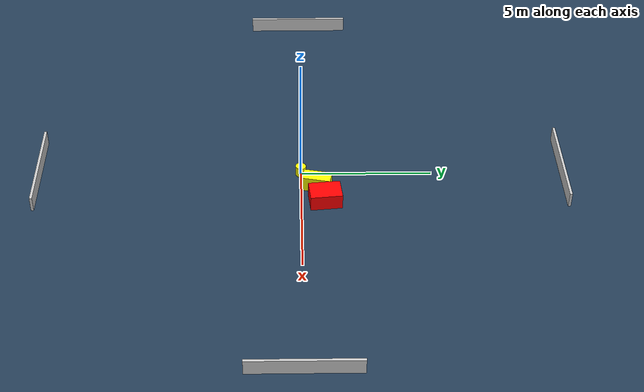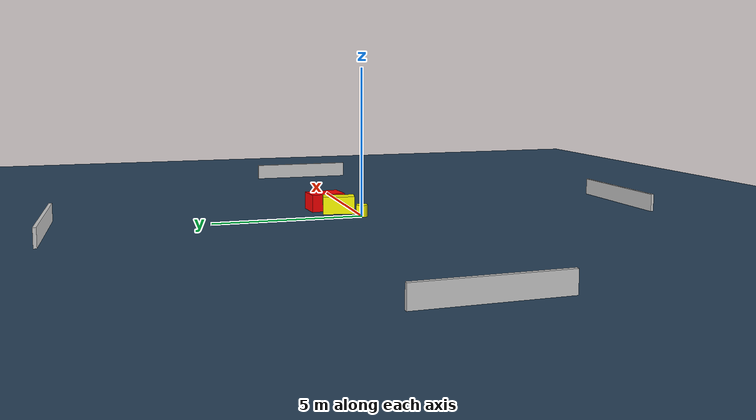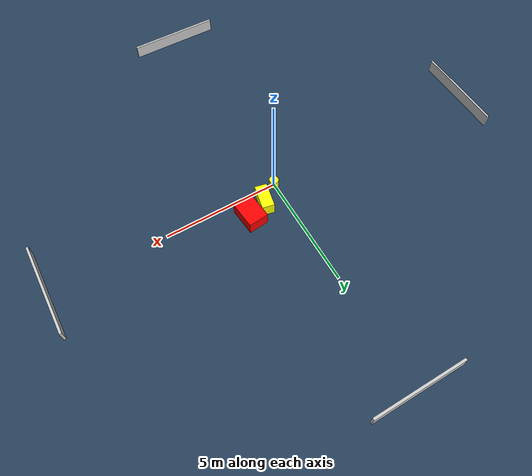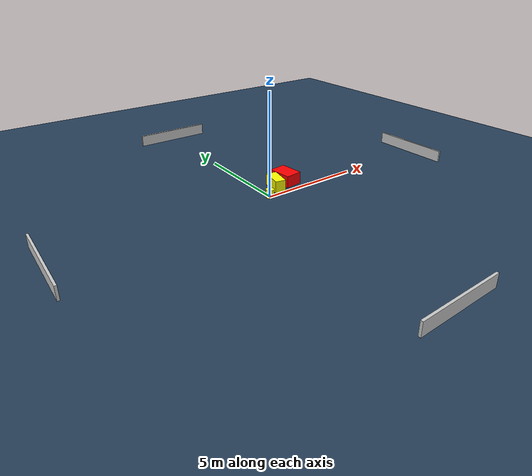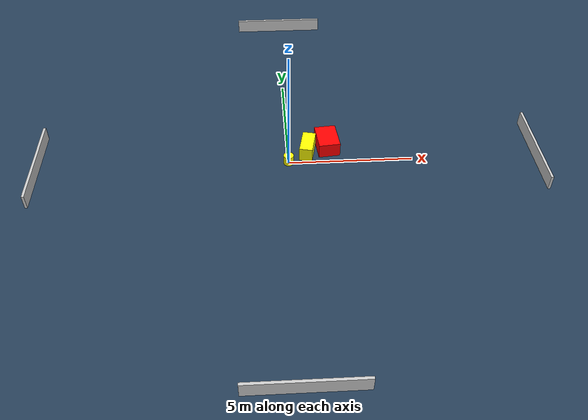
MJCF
<?xml version="1.0" ?>
<mujoco model="generated_environment">
  <option timestep="0.01" integrator="RK4" cone="elliptic"/>
  <default>
    <geom density="1"/>
  </default>
  <asset>
    <texture builtin="gradient" height="3072" name="skybox" rgb1="0.3 0.5 0.7" rgb2="0 0 0" type="skybox" width="512"/>
    <texture builtin="checker" height="300" name="groundplane" rgb1="0.2 0.3 0.4" rgb2="0.1 0.2 0.3" type="2d" width="300"/>
    <material name="groundplane" reflectance="0.2" texrepeat="5 5" texture="groundplane"/>
  </asset>
  <worldbody>
    <light dir="0 0 -1" directional="true" pos="0 0 1.5"/>
    <geom condim="3" friction="0.5 0.005 0.001" material="groundplane" name="floor" pos="0 0 0" size="0 0 0.05" type="plane"/>
    <body name="walls">
      <geom name="wall_1" condim="4" pos="-10.0 0.0 0.3" rgba="0.800000011920929 0.800000011920929 0.800000011920929 1.0" size="0.05 2.0 0.3" type="box"/>
      <geom name="wall_2" condim="4" pos="10.0 0.0 0.3" rgba="0.800000011920929 0.800000011920929 0.800000011920929 1.0" size="0.05 2.0 0.3" type="box"/>
      <geom name="wall_3" condim="4" pos="0.0 -10.0 0.3" rgba="0.800000011920929 0.800000011920929 0.800000011920929 1.0" size="2.0 0.05 0.3" type="box"/>
      <geom name="wall_4" condim="4" pos="0.0 10.0 0.3" rgba="0.800000011920929 0.800000011920929 0.800000011920929 1.0" size="2.0 0.05 0.3" type="box"/>
    </body>
    <body name="robot">
      <joint name="joint_x" type="slide" pos="0 0 0" axis="1 0 0"/>
      <joint name="joint_y" type="slide" pos="0 0 0" axis="0 1 0"/>
      <geom name="robot" type="cylinder" pos="0.0 0.0 0.2" size="0.2 0.2 0.0" mass="5.0" friction="1.0 0.005 0.0001" condim="4" rgba="1.0 1.0 0.0 1.0"/>
    </body>
    <body name="obstacle_1_movable">
      <geom name="obstacle_1_movable" condim="4" pos="0.8016586807784883 0.6051574820061768 0.3" euler="0 0 258.2059656271026" friction="0.0 0.005 0.001" rgba="1.0 1.0 0.0 1.0" size="0.5364194026301479 0.2629758414659379 0.3" type="box" mass="0.1"/>
      <joint type="free"/>
    </body>
    <body name="obstacle_2_static">
      <geom name="obstacle_2_static" condim="4" pos="1.6216382172189745 0.8998459229987772 0.3" euler="0 0 95.65691546065392" friction="0.0 0.005 0.001" rgba="1.0 0.0 0.0 1.0" size="0.5977292124542075 0.43153937993919084 0.3" type="box"/>
    </body>
  </worldbody>
  <actuator>
    <motor name="actuator_x" joint="joint_x" gear="1" ctrlrange="-1 1"/>
    <motor name="actuator_y" joint="joint_y" gear="1" ctrlrange="-1 1"/>
  </actuator>
</mujoco>
